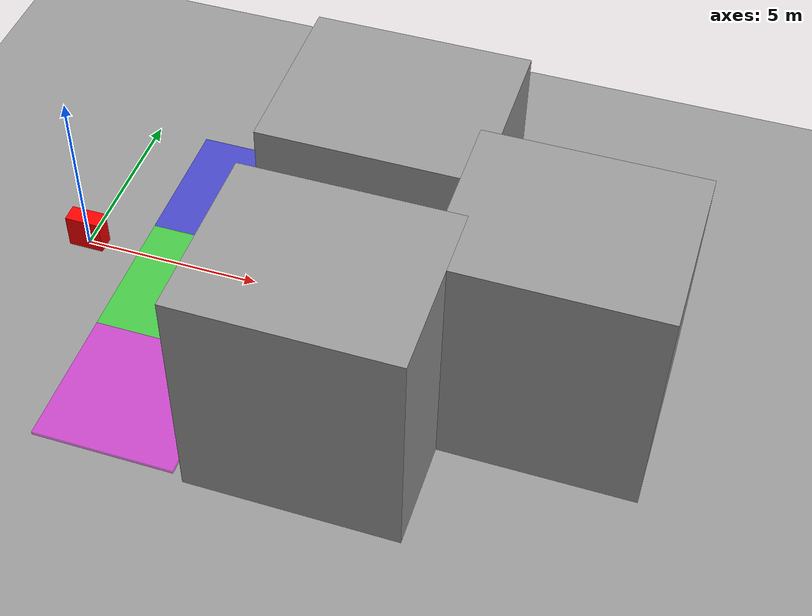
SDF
<?xml version="1.0"?>
<sdf version='1.6'>
  <world name='Parking2DEnvironment'>
    <light name='sun' type='directional'>
      <cast_shadows>1</cast_shadows>
      <pose frame=''>0 0 10 0 -0 0</pose>
      <diffuse>0.8 0.8 0.8 1</diffuse>
      <specular>0.2 0.2 0.2 1</specular>
      <attenuation>
        <range>1000</range>
        <constant>0.9</constant>
        <linear>0.01</linear>
        <quadratic>0.001</quadratic>
      </attenuation>
      <direction>-0.5 0.1 -0.9</direction>
    </light>
    <gravity>0 0 -9.8</gravity>
    <magnetic_field>6e-06 2.3e-05 -4.2e-05</magnetic_field>
    <atmosphere type='adiabatic'/>
    <physics name='default_physics' default='0' type='ode'>
      <max_step_size>0.001</max_step_size>
      <real_time_factor>1</real_time_factor>
      <real_time_update_rate>1000</real_time_update_rate>
    </physics>
    <scene>
      <ambient>0.4 0.4 0.4 1</ambient>
      <background>0.7 0.7 0.7 1</background>
      <shadows>1</shadows>
    </scene>
    <wind/>
    <spherical_coordinates>
      <surface_model>EARTH_WGS84</surface_model>
      <latitude_deg>0</latitude_deg>
      <longitude_deg>0</longitude_deg>
      <elevation>0</elevation>
      <heading_deg>0</heading_deg>
    </spherical_coordinates>

    <model name='Obstacle_0'>
      <pose frame=''>8.0 -3.1 0.0 0 -0 0</pose>
      <link name='link'>
        <inertial>
          <mass>1</mass>
          <inertia>
            <ixx>0.166667</ixx>
            <ixy>0</ixy>
            <ixz>0</ixz>
            <iyy>0.166667</iyy>
            <iyz>0</iyz>
            <izz>0.166667</izz>
          </inertia>
          <pose frame=''>0 0 0 0 -0 0</pose>
        </inertial>
        <collision name='collision'>
          <geometry>
            <box>
              <size>6 5 10.0</size>
            </box>
          </geometry>
          <max_contacts>10</max_contacts>
          <surface>
            <contact>
              <ode/>
            </contact>
            <bounce/>
            <friction>
              <torsional>
                <ode/>
              </torsional>
              <ode/>
            </friction>
          </surface>
        </collision>
        <visual name='visual'>
          <geometry>
            <box>
              <size>6 5 10.0</size>
            </box>
          </geometry>
          <material>
            <script>
              <name>Gazebo/Grey</name>
              <uri>file://media/materials/scripts/gazebo.material</uri>
            </script>
            <ambient>0 0 0 1.0</ambient>
          </material>
        </visual>
        <self_collide>0</self_collide>
        <enable_wind>0</enable_wind>
        <kinematic>0</kinematic>
      </link>
    </model>

    <model name='Obstacle_1'>
      <pose frame=''>8.0 3.1 0.0 0 -0 0</pose>
      <link name='link'>
        <inertial>
          <mass>1</mass>
          <inertia>
            <ixx>0.166667</ixx>
            <ixy>0</ixy>
            <ixz>0</ixz>
            <iyy>0.166667</iyy>
            <iyz>0</iyz>
            <izz>0.166667</izz>
          </inertia>
          <pose frame=''>0 0 0 0 -0 0</pose>
        </inertial>
        <collision name='collision'>
          <geometry>
            <box>
              <size>6 5 10.0</size>
            </box>
          </geometry>
          <max_contacts>10</max_contacts>
          <surface>
            <contact>
              <ode/>
            </contact>
            <bounce/>
            <friction>
              <torsional>
                <ode/>
              </torsional>
              <ode/>
            </friction>
          </surface>
        </collision>
        <visual name='visual'>
          <geometry>
            <box>
              <size>6 5 10.0</size>
            </box>
          </geometry>
          <material>
            <script>
              <name>Gazebo/Grey</name>
              <uri>file://media/materials/scripts/gazebo.material</uri>
            </script>
            <ambient>0 0 0 1.0</ambient>
          </material>
        </visual>
        <self_collide>0</self_collide>
        <enable_wind>0</enable_wind>
        <kinematic>0</kinematic>
      </link>
    </model>

    <model name='Obstacle_2'>
      <pose frame=''>13.45 0.0 0.0 0 -0 0</pose>
      <link name='link'>
        <inertial>
          <mass>1</mass>
          <inertia>
            <ixx>0.166667</ixx>
            <ixy>0</ixy>
            <ixz>0</ixz>
            <iyy>0.166667</iyy>
            <iyz>0</iyz>
            <izz>0.166667</izz>
          </inertia>
          <pose frame=''>0 0 0 0 -0 0</pose>
        </inertial>
        <collision name='collision'>
          <geometry>
            <box>
              <size>6 5 10.0</size>
            </box>
          </geometry>
          <max_contacts>10</max_contacts>
          <surface>
            <contact>
              <ode/>
            </contact>
            <bounce/>
            <friction>
              <torsional>
                <ode/>
              </torsional>
              <ode/>
            </friction>
          </surface>
        </collision>
        <visual name='visual'>
          <geometry>
            <box>
              <size>6 5 10.0</size>
            </box>
          </geometry>
          <material>
            <script>
              <name>Gazebo/Grey</name>
              <uri>file://media/materials/scripts/gazebo.material</uri>
            </script>
            <ambient>0 0 0 1.0</ambient>
          </material>
        </visual>
        <self_collide>0</self_collide>
        <enable_wind>0</enable_wind>
        <kinematic>0</kinematic>
      </link>
    </model>

    <model name='Tile_1'>
      <pose frame=''>3.0 4.0 -1.0 0 -0 0</pose>
      <link name='link'>
        <inertial>
          <mass>1</mass>
          <inertia>
            <ixx>0.166667</ixx>
            <ixy>0</ixy>
            <ixz>0</ixz>
            <iyy>0.166667</iyy>
            <iyz>0</iyz>
            <izz>0.166667</izz>
          </inertia>
          <pose frame=''>0 0 0 0 -0 0</pose>
        </inertial>
        <visual name='visual'>
          <geometry>
            <box>
              <size>4 4 0.1</size>
            </box>
          </geometry>
          <material>
            <script>
              <name>Gazebo/Grey</name>
              <uri>file://media/materials/scripts/gazebo.material</uri>
            </script>
            <ambient>0.0 0.0 1.0 0.5</ambient>
          </material>
        </visual>
        <self_collide>0</self_collide>
        <enable_wind>0</enable_wind>
        <kinematic>0</kinematic>
      </link>
    </model>

    <model name='Tile_2'>
      <pose frame=''>3.0 0.0 -1.0 0 -0 0</pose>
      <link name='link'>
        <inertial>
          <mass>1</mass>
          <inertia>
            <ixx>0.166667</ixx>
            <ixy>0</ixy>
            <ixz>0</ixz>
            <iyy>0.166667</iyy>
            <iyz>0</iyz>
            <izz>0.166667</izz>
          </inertia>
          <pose frame=''>0 0 0 0 -0 0</pose>
        </inertial>
        <visual name='visual'>
          <geometry>
            <box>
              <size>4 4 0.1</size>
            </box>
          </geometry>
          <material>
            <script>
              <name>Gazebo/Grey</name>
              <uri>file://media/materials/scripts/gazebo.material</uri>
            </script>
            <ambient>0.0 1.0 0.0 0.5</ambient>
          </material>
        </visual>
        <self_collide>0</self_collide>
        <enable_wind>0</enable_wind>
        <kinematic>0</kinematic>
      </link>
    </model>

    <model name='Tile_3'>
      <pose frame=''>3.0 -4.0 -1.0 0 -0 0</pose>
      <link name='link'>
        <inertial>
          <mass>1</mass>
          <inertia>
            <ixx>0.166667</ixx>
            <ixy>0</ixy>
            <ixz>0</ixz>
            <iyy>0.166667</iyy>
            <iyz>0</iyz>
            <izz>0.166667</izz>
          </inertia>
          <pose frame=''>0 0 0 0 -0 0</pose>
        </inertial>
        <visual name='visual'>
          <geometry>
            <box>
              <size>4 4 0.1</size>
            </box>
          </geometry>
          <material>
            <script>
              <name>Gazebo/Grey</name>
              <uri>file://media/materials/scripts/gazebo.material</uri>
            </script>
            <ambient>1.0 0.0 1.0 0.5</ambient>
          </material>
        </visual>
        <self_collide>0</self_collide>
        <enable_wind>0</enable_wind>
        <kinematic>0</kinematic>
      </link>
    </model>

    <model name='Floor'>
      <pose frame=''>0 0 -2.0 0 -0 0</pose>
      <link name='link'>
        <inertial>
          <mass>1</mass>
          <inertia>
            <ixx>0.166667</ixx>
            <ixy>0</ixy>
            <ixz>0</ixz>
            <iyy>0.166667</iyy>
            <iyz>0</iyz>
            <izz>0.166667</izz>
          </inertia>
          <pose frame=''>0 0 0 0 -0 0</pose>
        </inertial>
        <visual name='visual'>
          <geometry>
            <box>
              <size>100 100 0.1</size>
            </box>
          </geometry>
          <material>
            <script>
              <name>Gazebo/Grey</name>
              <uri>file://media/materials/scripts/gazebo.material</uri>
            </script>
            <ambient>1.0 1.0 1.0 1.0</ambient>
          </material>
        </visual>
        <self_collide>0</self_collide>
        <enable_wind>0</enable_wind>
        <kinematic>0</kinematic>
      </link>
    </model>

    <model name='GoalArea'>
      <pose frame=''>10.0 0.0 0.0 0 -0 0</pose>
      <link name='GoalAreaLink'>
        <inertial>
          <mass>1</mass>
          <inertia>
            <ixx>0.166667</ixx>
            <ixy>0</ixy>
            <ixz>0</ixz>
            <iyy>0.166667</iyy>
            <iyz>0</iyz>
            <izz>0.166667</izz>
          </inertia>
          <pose frame=''>0 0 0 0 -0 0</pose>
        </inertial>
        <visual name='visual'>
          <geometry>
            <sphere>
              <radius>0.2</radius>
            </sphere>
          </geometry>
          <material>
            <script>
              <name>Gazebo/Grey</name>
              <uri>file://media/materials/scripts/gazebo.material</uri>
            </script>
            <ambient>0 1 0 1</ambient>
          </material>
        </visual>
        <self_collide>0</self_collide>
        <enable_wind>0</enable_wind>
        <kinematic>0</kinematic>
      </link>
    </model>

    <model name='Vehicle'>
      <pose frame=''>0.0 0.0 0.5 0 -0 0</pose>
      <link name='link'>
        <inertial>
          <mass>1</mass>
          <inertia>
            <ixx>0.166667</ixx>
            <ixy>0</ixy>
            <ixz>0</ixz>
            <iyy>0.166667</iyy>
            <iyz>0</iyz>
            <izz>0.166667</izz>
          </inertia>
          <pose frame=''>0 0 0 0 -0 0</pose>
        </inertial>
        <collision name='collision'>
          <geometry>
            <box>
              <size>1.0 0.5 1</size>
            </box>
          </geometry>
          <max_contacts>10</max_contacts>
          <surface>
            <contact>
              <ode/>
            </contact>
            <bounce/>
            <friction>
              <torsional>
                <ode/>
              </torsional>
              <ode/>
            </friction>
          </surface>
        </collision>
        <visual name='visual'>
          <geometry>
            <box>
              <size>1.0 0.5 1</size>
            </box>
          </geometry>
          <material>
            <script>
              <name>Gazebo/Grey</name>
              <uri>file://media/materials/scripts/gazebo.material</uri>
            </script>
            <ambient>1.0 0.0 0.0 1.0</ambient>
          </material>
        </visual>
        <self_collide>0</self_collide>
        <enable_wind>0</enable_wind>
        <kinematic>0</kinematic>
      </link>
    </model>

    <gui fullscreen='0'>
      <camera name='user_camera'>
        <pose frame=''>-1.47298 -0.355116 9.73836 -0 1.2618 -0.035805</pose>
        <view_controller>orbit</view_controller>
        <projection_type>perspective</projection_type>
      </camera>
    </gui>
  </world>
</sdf>
